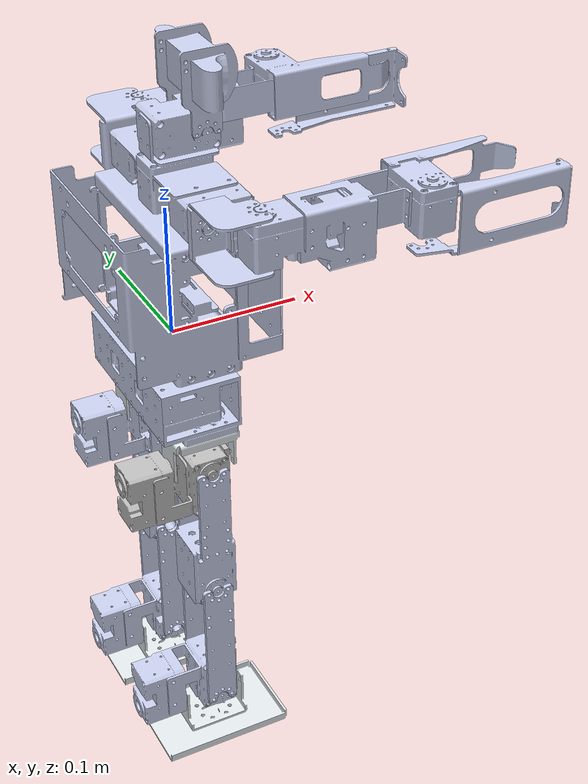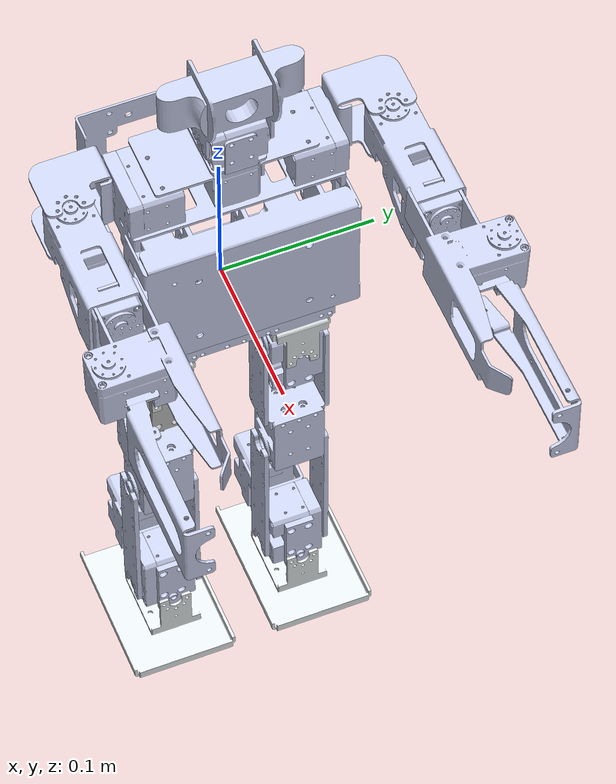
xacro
<?xml version="1.0" ?>
<robot
  name="kidsize" xmlns:xacro="http://www.ros.org/wiki/xacro">
  <xacro:property name="pi" value="3.14159265359" />
	<xacro:property name="deg" value="${pi/180}" />
		<material name="black">
			<color rgba="0.1 0.1 0.1 1" />
		</material>
		<material name="white">
			<color rgba="0.8 0.8 0.8 1" />
		</material>
		<material name="clear">
			<color rgba="1.0 1.0 1.0 0.0" />
		</material>
		<material name="orange">
			<color rgba="${255/255} ${108/255} ${10/255} 1.0" />
		</material>
      <link name="dummy">
   </link>
  <link
    name="waist_link">
    <inertial>
      <origin
        xyz="-0.0088172 -4.3153E-08 -0.0020413"
        rpy="0 0 0" />
      <mass
        value="0.22475" />
      <inertia
        ixx="0.00037837"
        ixy="1.6316E-10"
        ixz="4.0465E-06"
        iyy="0.00011027"
        iyz="1.9797E-11"
        izz="0.00039153" />
    </inertial>
    <visual>
      <origin
        xyz="0 0 0"
        rpy="0 0 0" />
      <geometry>
        <mesh
          filename="package://urdf/kidsize_model/11th/meshes/waist_link.STL" />
      </geometry>
      <material
        name="">
        <color
          rgba="0.79216 0.81961 0.93333 1" />
      </material>
    </visual>
    <collision>
      <origin
        xyz="0 0 0"
        rpy="0 0 0" />
      <geometry>
        <mesh
          filename="package://urdf/kidsize_model/11th/meshes/waist_link.STL" />
      </geometry>
    </collision>
  </link>
  <joint name="dummy_joint" type="fixed">
    <origin
      xyz="0 0 -0.028"
      rpy="0 0 0" />
     <parent link="dummy"/>
     <child link="waist_link"/>
   </joint>
  <link
    name="trunk_link">
    <inertial>
      <origin
        xyz="0.0077094 2.1697E-05 0.11416"
        rpy="0 0 0" />
      <mass
        value="0.26146" />
      <inertia
        ixx="0.0010729"
        ixy="2.0691E-07"
        ixz="-2.0835E-05"
        iyy="0.00069595"
        iyz="4.0117E-07"
        izz="0.00069847" />
    </inertial>
    <visual>
      <origin
        xyz="0 0 0"
        rpy="0 0 0" />
      <geometry>
        <mesh
          filename="package://urdf/kidsize_model/11th/meshes/trunk_link.STL" />
      </geometry>
      <material
        name="">
        <color
          rgba="0.79216 0.81961 0.93333 1" />
      </material>
    </visual>
    <collision>
      <origin
        xyz="0 0 0"
        rpy="0 0 0" />
      <geometry>
        <mesh
          filename="package://urdf/kidsize_model/11th/meshes/trunk_link.STL" />
      </geometry>
    </collision>
  </link>
  <joint
    name="waist_yaw"
    type="revolute">
    <origin
      xyz="0 0 0"
      rpy="0 0 0" />
    <parent
      link="waist_link" />
    <child
      link="trunk_link" />
    <axis
      xyz="0 0 1" />
    <limit
      lower="${-pi*0.9}"
      upper="${pi*0.9}"
      effort="1000"
      velocity="100" />
    <dynamics
      damping="0.0"
      friction="0.7" />
  </joint>
  <link
    name="neck_Link">
    <inertial>
      <origin
        xyz="-0.0080916 -0.00072376 0.036704"
        rpy="0 0 0" />
      <mass
        value="0.047879" />
      <inertia
        ixx="8.2755E-06"
        ixy="1.0134E-07"
        ixz="-4.3905E-08"
        iyy="1.3404E-05"
        iyz="4.4903E-08"
        izz="1.4047E-05" />
    </inertial>
    <visual>
      <origin
        xyz="0 0 0"
        rpy="0 0 0" />
      <geometry>
        <mesh
          filename="package://urdf/kidsize_model/11th/meshes/neck_Link.STL" />
      </geometry>
      <material
        name="">
        <color
          rgba="0.79216 0.81961 0.93333 1" />
      </material>
    </visual>
    <collision>
      <origin
        xyz="0 0 0"
        rpy="0 0 0" />
      <geometry>
        <mesh
          filename="package://urdf/kidsize_model/11th/meshes/neck_Link.STL" />
      </geometry>
    </collision>
  </link>
  <joint
    name="neck_yaw"
    type="revolute">
    <origin
      xyz="0.021 0 0.1495"
      rpy="0 0 0" />
    <parent
      link="trunk_link" />
    <child
      link="neck_Link" />
    <axis
      xyz="0 0 1" />
    <limit
      lower="${-pi*0.9}"
      upper="${pi*0.9}"
      effort="1000"
      velocity="100" />
    <dynamics
      damping="0.0"
      friction="0.7" />
  </joint>
  <link
    name="head_link">
    <inertial>
      <origin
        xyz="0.00029663 -3.6886E-05 0.037704"
        rpy="0 0 0" />
      <mass
        value="0.049548" />
      <inertia
        ixx="3.0661E-05"
        ixy="1.425E-10"
        ixz="-4.6871E-08"
        iyy="7.3036E-06"
        iyz="1.441E-09"
        izz="2.8273E-05" />
    </inertial>
    <visual>
      <origin
        xyz="0 0 0"
        rpy="0 0 0" />
      <geometry>
        <mesh
          filename="package://urdf/kidsize_model/11th/meshes/head_link.STL" />
      </geometry>
      <material
        name="">
        <color
          rgba="0.79216 0.81961 0.93333 1" />
      </material>
    </visual>
    <collision>
      <origin
        xyz="0 0 0"
        rpy="0 0 0" />
      <geometry>
        <mesh
          filename="package://urdf/kidsize_model/11th/meshes/head_link.STL" />
      </geometry>
    </collision>
  </link>
  <joint
    name="head_pitch"
    type="revolute">
    <origin
      xyz="0.00375 0 0.038"
      rpy="0 0 0" />
    <parent
      link="neck_Link" />
    <child
      link="head_link" />
    <axis
      xyz="0 -1 0" />
    <limit
      lower="${-pi*0.9}"
      upper="${pi*0.9}"
      effort="1000"
      velocity="100" />
    <dynamics
      damping="0.0"
      friction="0.7" />
  </joint>

  <link
    name="left_shoulder_pitch_link">
    <inertial>
      <origin
        xyz="0.0030363 0.036247 3.3909E-13"
        rpy="0 0 0" />
      <mass
        value="0.0085293" />
      <inertia
        ixx="4.4633E-06"
        ixy="-3.5249E-07"
        ixz="1.2655E-20"
        iyy="3.6085E-06"
        iyz="4.0375E-20"
        izz="2.7666E-06" />
    </inertial>
    <visual>
      <origin
        xyz="0 0 0"
        rpy="0 0 0" />
      <geometry>
        <mesh
          filename="package://urdf/kidsize_model/11th/meshes/left_shoulder_pitch_link.STL" />
      </geometry>
      <material
        name="">
        <color
          rgba="0.79216 0.81961 0.93333 1" />
      </material>
    </visual>
    <collision>
      <origin
        xyz="0 0 0"
        rpy="0 0 0" />
      <geometry>
        <mesh
          filename="package://urdf/kidsize_model/11th/meshes/left_shoulder_pitch_link.STL" />
      </geometry>
    </collision>
  </link>
  <joint
    name="left_shoulder_pitch"
    type="revolute">
    <origin
      xyz="0 0.0515 0.14675"
      rpy="0 0 0" />
    <parent
      link="trunk_link" />
    <child
      link="left_shoulder_pitch_link" />
    <axis
      xyz="0 1 0" />
    <limit
      lower="${-pi*0.9}"
      upper="${pi*0.9}"
      effort="1000"
      velocity="100" />
    <dynamics
      damping="0.0"
      friction="0.7" />
  </joint>
  <link
    name="left_upper_arm_link">
    <inertial>
      <origin
        xyz="-0.0021118 -2.0802E-07 -0.037458"
        rpy="0 0 0" />
      <mass
        value="0.093248" />
      <inertia
        ixx="7.4077E-05"
        ixy="1.7432E-10"
        ixz="-6.9326E-06"
        iyy="8.1541E-05"
        iyz="2.1903E-10"
        izz="2.1686E-05" />
    </inertial>
    <visual>
      <origin
        xyz="0 0 0"
        rpy="0 0 0" />
      <geometry>
        <mesh
          filename="package://urdf/kidsize_model/11th/meshes/left_upper_arm_link.STL" />
      </geometry>
      <material
        name="">
        <color
          rgba="0.79216 0.81961 0.93333 1" />
      </material>
    </visual>
    <collision>
      <origin
        xyz="0 0 0"
        rpy="0 0 0" />
      <geometry>
        <mesh
          filename="package://urdf/kidsize_model/11th/meshes/left_upper_arm_link.STL" />
      </geometry>
    </collision>
  </link>
  <joint
    name="left_shoulder_roll"
    type="revolute">
    <origin
      xyz="0.02425 0.049 0"
      rpy="0 -1.5708 0" />
    <parent
      link="left_shoulder_pitch_link" />
    <child
      link="left_upper_arm_link" />
    <axis
      xyz="1 0 0" />
    <limit
      lower="${-pi*0.9}"
      upper="${pi*0.9}"
      effort="1000"
      velocity="100" />
    <dynamics
      damping="0.0"
      friction="0.7" />
  </joint>
  <link
    name="left_middle_arm_link">
    <inertial>
      <origin
        xyz="0.0007383 8.6844E-06 -0.047706"
        rpy="0 0 0" />
      <mass
        value="0.047332" />
      <inertia
        ixx="1.3032E-05"
        ixy="-2.9073E-09"
        ixz="1.3333E-07"
        iyy="1.3674E-05"
        iyz="-1.3074E-08"
        izz="7.9361E-06" />
    </inertial>
    <visual>
      <origin
        xyz="0 0 0"
        rpy="0 0 0" />
      <geometry>
        <mesh
          filename="package://urdf/kidsize_model/11th/meshes/left_middle_arm_link.STL" />
      </geometry>
      <material
        name="">
        <color
          rgba="0.79216 0.81961 0.93333 1" />
      </material>
    </visual>
    <collision>
      <origin
        xyz="0 0 0"
        rpy="0 0 0" />
      <geometry>
        <mesh
          filename="package://urdf/kidsize_model/11th/meshes/left_middle_arm_link.STL" />
      </geometry>
    </collision>
  </link>
  <joint
    name="left_middle_yaw"
    type="revolute">
    <origin
      xyz="0.00575 0 -0.060331"
      rpy="0 0 0" />
    <parent
      link="left_upper_arm_link" />
    <child
      link="left_middle_arm_link" />
    <axis
      xyz="0 0 -1" />
    <limit
      lower="${-pi*0.9}"
      upper="${pi*0.9}"
      effort="1000"
      velocity="100" />
    <dynamics
      damping="0.0"
      friction="0.7" />
  </joint>
  <link
    name="left_lower_arm_link">
    <inertial>
      <origin
        xyz="0.0076862 0.00892 -0.075914"
        rpy="0 0 0" />
      <mass
        value="0.023059" />
      <inertia
        ixx="3.4222E-05"
        ixy="8.0645E-07"
        ixz="5.5788E-06"
        iyy="4.0879E-05"
        iyz="1.6007E-06"
        izz="1.2225E-05" />
    </inertial>
    <visual>
      <origin
        xyz="0 0 0"
        rpy="0 0 0" />
      <geometry>
        <mesh
          filename="package://urdf/kidsize_model/11th/meshes/left_lower_arm_link.STL" />
      </geometry>
      <material
        name="">
        <color
          rgba="0.79216 0.81961 0.93333 1" />
      </material>
    </visual>
    <collision>
      <origin
        xyz="0 0 0"
        rpy="0 0 0" />
      <geometry>
        <mesh
          filename="package://urdf/kidsize_model/11th/meshes/left_lower_arm_link.STL" />
      </geometry>
    </collision>
  </link>
  <joint
    name="left_elbow_pitch"
    type="revolute">
    <origin
      xyz="0 0 -0.06075"
      rpy="0 0 0" />
    <parent
      link="left_middle_arm_link" />
    <child
      link="left_lower_arm_link" />
    <axis
      xyz="1 0 0" />
    <limit
      lower="${-pi*0.9}"
      upper="${pi*0.9}"
      effort="1000"
      velocity="100" />
    <dynamics
      damping="0.0"
      friction="0.7" />
  </joint>
  <link
    name="right_shoulder_pitch_link">
    <inertial>
      <origin
        xyz="0.0030363 -0.036247 3.6568E-13"
        rpy="0 0 0" />
      <mass
        value="0.0085293" />
      <inertia
        ixx="4.4633E-06"
        ixy="3.5249E-07"
        ixz="4.0133E-20"
        iyy="3.6085E-06"
        iyz="-7.6128E-20"
        izz="2.7666E-06" />
    </inertial>
    <visual>
      <origin
        xyz="0 0 0"
        rpy="0 0 0" />
      <geometry>
        <mesh
          filename="package://urdf/kidsize_model/11th/meshes/right_shoulder_pitch_link.STL" />
      </geometry>
      <material
        name="">
        <color
          rgba="0.79216 0.81961 0.93333 1" />
      </material>
    </visual>
    <collision>
      <origin
        xyz="0 0 0"
        rpy="0 0 0" />
      <geometry>
        <mesh
          filename="package://urdf/kidsize_model/11th/meshes/right_shoulder_pitch_link.STL" />
      </geometry>
    </collision>
  </link>
  <joint
    name="right_shoulder_pitch"
    type="revolute">
    <origin
      xyz="0 -0.0515 0.14675"
      rpy="0 0 0" />
    <parent
      link="trunk_link" />
    <child
      link="right_shoulder_pitch_link" />
    <axis
      xyz="0 -1 0" />
    <limit
      lower="${-pi*0.9}"
      upper="${pi*0.9}"
      effort="1000"
      velocity="100" />
    <dynamics
      damping="0.0"
      friction="0.7" />
  </joint>
  <link
    name="right_upper_arm_link">
    <inertial>
      <origin
        xyz="-0.0021118 -2.0802E-07 -0.037458"
        rpy="0 0 0" />
      <mass
        value="0.093248" />
      <inertia
        ixx="7.4077E-05"
        ixy="1.7432E-10"
        ixz="-6.9326E-06"
        iyy="8.1541E-05"
        iyz="2.1903E-10"
        izz="2.1686E-05" />
    </inertial>
    <visual>
      <origin
        xyz="0 0 0"
        rpy="0 0 0" />
      <geometry>
        <mesh
          filename="package://urdf/kidsize_model/11th/meshes/right_upper_arm_link.STL" />
      </geometry>
      <material
        name="">
        <color
          rgba="0.79216 0.81961 0.93333 1" />
      </material>
    </visual>
    <collision>
      <origin
        xyz="0 0 0"
        rpy="0 0 0" />
      <geometry>
        <mesh
          filename="package://urdf/kidsize_model/11th/meshes/right_upper_arm_link.STL" />
      </geometry>
    </collision>
  </link>
  <joint
    name="right_shoulder_roll"
    type="revolute">
    <origin
      xyz="0.02425 -0.049 0"
      rpy="0 -1.5708 0" />
    <parent
      link="right_shoulder_pitch_link" />
    <child
      link="right_upper_arm_link" />
    <axis
      xyz="1 0 0" />
    <limit
      lower="${-pi*0.9}"
      upper="${pi*0.9}"
      effort="1000"
      velocity="100" />
    <dynamics
      damping="0.0"
      friction="0.7" />
  </joint>
  <link
    name="right_middle_arm_link">
    <inertial>
      <origin
        xyz="0.0007327 2.0507E-07 -0.047732"
        rpy="0 0 0" />
      <mass
        value="0.047295" />
      <inertia
        ixx="1.2988E-05"
        ixy="7.1062E-12"
        ixz="1.4211E-07"
        iyy="1.3632E-05"
        iyz="2.0385E-10"
        izz="7.9297E-06" />
    </inertial>
    <visual>
      <origin
        xyz="0 0 0"
        rpy="0 0 0" />
      <geometry>
        <mesh
          filename="package://urdf/kidsize_model/11th/meshes/right_middle_arm_link.STL" />
      </geometry>
      <material
        name="">
        <color
          rgba="0.79216 0.81961 0.93333 1" />
      </material>
    </visual>
    <collision>
      <origin
        xyz="0 0 0"
        rpy="0 0 0" />
      <geometry>
        <mesh
          filename="package://urdf/kidsize_model/11th/meshes/right_middle_arm_link.STL" />
      </geometry>
    </collision>
  </link>
  <joint
    name="right_middle_yaw"
    type="revolute">
    <origin
      xyz="0.00575 0 -0.060331"
      rpy="0 0 0" />
    <parent
      link="right_upper_arm_link" />
    <child
      link="right_middle_arm_link" />
    <axis
      xyz="0 0 -1" />
    <limit
      lower="${-pi*0.9}"
      upper="${pi*0.9}"
      effort="1000"
      velocity="100" />
    <dynamics
      damping="0.0"
      friction="0.7" />
  </joint>
  <link
    name="right_lower_arm_link">
    <inertial>
      <origin
        xyz="0.007686 -0.00892 -0.075914"
        rpy="0 0 0" />
      <mass
        value="0.023059" />
      <inertia
        ixx="3.4222E-05"
        ixy="-8.0645E-07"
        ixz="5.5789E-06"
        iyy="4.0879E-05"
        iyz="-1.6007E-06"
        izz="1.2225E-05" />
    </inertial>
    <visual>
      <origin
        xyz="0 0 0"
        rpy="0 0 0" />
      <geometry>
        <mesh
          filename="package://urdf/kidsize_model/11th/meshes/right_lower_arm_link.STL" />
      </geometry>
      <material
        name="">
        <color
          rgba="0.79216 0.81961 0.93333 1" />
      </material>
    </visual>
    <collision>
      <origin
        xyz="0 0 0"
        rpy="0 0 0" />
      <geometry>
        <mesh
          filename="package://urdf/kidsize_model/11th/meshes/right_lower_arm_link.STL" />
      </geometry>
    </collision>
  </link>
  <joint
    name="right_elbow_pitch"
    type="revolute">
    <origin
      xyz="0 0 -0.06075"
      rpy="0 0 0" />
    <parent
      link="right_middle_arm_link" />
    <child
      link="right_lower_arm_link" />
    <axis
      xyz="1 0 0" />
    <limit
      lower="${-pi*0.9}"
      upper="${pi*0.9}"
      effort="1000"
      velocity="100" />
    <dynamics
      damping="0.0"
      friction="0.7" />
  </joint>
  <link
    name="left_hip_yaw_link">
    <inertial>
      <origin
        xyz="-0.0021546 2.2293E-13 -0.034318"
        rpy="0 0 0" />
      <mass
        value="0.018738" />
      <inertia
        ixx="3.9876E-06"
        ixy="3.1499E-20"
        ixz="1.4063E-08"
        iyy="8.1834E-06"
        iyz="-4.7261E-20"
        izz="8.9113E-06" />
    </inertial>
    <visual>
      <origin
        xyz="0 0 0"
        rpy="0 0 0" />
      <geometry>
        <mesh
          filename="package://urdf/kidsize_model/11th/meshes/left_hip_yaw_link.STL" />
      </geometry>
      <material
        name="">
        <color
          rgba="0.89804 0.91765 0.92941 1" />
      </material>
    </visual>
    <collision>
      <origin
        xyz="0 0 0"
        rpy="0 0 0" />
      <geometry>
        <mesh
          filename="package://urdf/kidsize_model/11th/meshes/left_hip_yaw_link.STL" />
      </geometry>
    </collision>
  </link>
  <joint
    name="left_hip_yaw"
    type="revolute">
    <origin
      xyz="0 0.0445 0"
      rpy="0 0 0" />
    <parent
      link="waist_link" />
    <child
      link="left_hip_yaw_link" />
    <axis
      xyz="0 0 -1" />
    <limit
      lower="${-pi*0.9}"
      upper="${pi*0.9}"
      effort="1000"
      velocity="100" />
    <dynamics
      damping="0.0"
      friction="0.7" />
  </joint>
  <link
    name="left_hip_roll_link">
    <inertial>
      <origin
        xyz="0.024082 0.00037244 -0.011886"
        rpy="0 0 0" />
      <mass
        value="0.093018" />
      <inertia
        ixx="2.4459E-05"
        ixy="-7.3376E-07"
        ixz="-2.9851E-07"
        iyy="7.1013E-05"
        iyz="-1.0269E-07"
        izz="6.1881E-05" />
    </inertial>
    <visual>
      <origin
        xyz="0 0 0"
        rpy="0 0 0" />
      <geometry>
        <mesh
          filename="package://urdf/kidsize_model/11th/meshes/left_hip_roll_link.STL" />
      </geometry>
      <material
        name="">
        <color
          rgba="0.79216 0.81961 0.93333 1" />
      </material>
    </visual>
    <collision>
      <origin
        xyz="0 0 0"
        rpy="0 0 0" />
      <geometry>
        <mesh
          filename="package://urdf/kidsize_model/11th/meshes/left_hip_roll_link.STL" />
      </geometry>
    </collision>
  </link>
  <joint
    name="left_hip_roll"
    type="revolute">
    <origin
      xyz="-0.04575 0 -0.0586"
      rpy="0 0 0" />
    <parent
      link="left_hip_yaw_link" />
    <child
      link="left_hip_roll_link" />
    <axis
      xyz="1 0 0" />
    <limit
      lower="${-pi*0.9}"
      upper="${pi*0.9}"
      effort="1000"
      velocity="100" />
    <dynamics
      damping="0.0"
      friction="0.7" />
  </joint>
  <link
    name="left_bottom_foot_fake_link"><inertial>
      <origin
        xyz="0.0832407016442707 -0.0275030808874214 -0.0302963318842118"
        rpy="0 0 0" />
      <mass
        value="0.0001" />
      <inertia
        ixx="1.04719755119654E-22"
        ixy="-1.06581097908222E-67"
        ixz="3.63206357723254E-51"
        iyy="1.04719755119654E-22"
        iyz="-3.03551380010738E-55"
        izz="1.57079632679485E-22" />
    </inertial>
    <visual>
      <origin
        xyz="0 0 0"
        rpy="0 0 0" />
      <geometry>
        <mesh
          filename="package://urdf/kidsize_model/robocup_robot/meshes/left_bottom_foot_fake_link.STL" />
      </geometry>
      <material
        name="">
        <color
          rgba="0.792156862745098 0.819607843137255 0.933333333333333 1" />
      </material>
    </visual>
    <collision>
      <origin
        xyz="0 0 0"
        rpy="0 0 0" />
      <geometry>
        <mesh
          filename="package://urdf/kidsize_model/robocup_robot/meshes/left_bottom_foot_fake_link.STL" />
      </geometry>
    </collision>
  </link>
  <joint
    name="left_bottom_foot_fake_joint"
    type="fixed">
    <origin
      xyz="0.04476 -0.00049 -0.02556"
      rpy="0 0 0" />
    <parent
      link="left_foot_link" />
    <child
      link="left_bottom_foot_fake_link" />
    <axis
      xyz="1 0 0" />
    <limit
      lower="${-pi}"
      upper="${pi}"
      effort="10"
      velocity="0.1" />
    <dynamics
      friction="1" />
  </joint>
  <link
    name="left_thigh_link">
    <inertial>
      <origin
        xyz="-1.422E-07 0.00050805 -0.086495"
        rpy="0 0 0" />
      <mass
        value="0.068207" />
      <inertia
        ixx="5.7966E-05"
        ixy="-4.9275E-12"
        ixz="-3.0556E-10"
        iyy="5.395E-05"
        iyz="5.0551E-07"
        izz="1.6248E-05" />
    </inertial>
    <visual>
      <origin
        xyz="0 0 0"
        rpy="0 0 0" />
      <geometry>
        <mesh
          filename="package://urdf/kidsize_model/11th/meshes/left_thigh_link.STL" />
      </geometry>
      <material
        name="">
        <color
          rgba="0.79216 0.81961 0.93333 1" />
      </material>
    </visual>
    <collision>
      <origin
        xyz="0 0 0"
        rpy="0 0 0" />
      <geometry>
        <mesh
          filename="package://urdf/kidsize_model/11th/meshes/left_thigh_link.STL" />
      </geometry>
    </collision>
  </link>
  <joint
    name="left_hip_pitch"
    type="revolute">
    <origin
      xyz="0.04525 0 0"
      rpy="0 0 0" />
    <parent
      link="left_hip_roll_link" />
    <child
      link="left_thigh_link" />
    <axis
      xyz="0 1 0" />
    <limit
      lower="${-pi*0.9}"
      upper="${pi*0.9}"
      effort="1000"
      velocity="100" />
    <dynamics
      damping="0.0"
      friction="0.7" />
  </joint>
  <link
    name="left_shank_link">
    <inertial>
      <origin
        xyz="-1.3913E-12 2.7001E-13 -0.055223"
        rpy="0 0 0" />
      <mass
        value="0.015114" />
      <inertia
        ixx="2.1026E-05"
        ixy="9.7515E-20"
        ixz="-1.4082E-20"
        iyy="1.5417E-05"
        iyz="8.1038E-19"
        izz="7.1166E-06" />
    </inertial>
    <visual>
      <origin
        xyz="0 0 0"
        rpy="0 0 0" />
      <geometry>
        <mesh
          filename="package://urdf/kidsize_model/11th/meshes/left_shank_link.STL" />
      </geometry>
      <material
        name="">
        <color
          rgba="0.79216 0.81961 0.93333 1" />
      </material>
    </visual>
    <collision>
      <origin
        xyz="0 0 0"
        rpy="0 0 0" />
      <geometry>
        <mesh
          filename="package://urdf/kidsize_model/11th/meshes/left_shank_link.STL" />
      </geometry>
    </collision>
  </link>
  <joint
    name="left_knee_pitch"
    type="revolute">
    <origin
      xyz="0 0 -0.11"
      rpy="0 0 0" />
    <parent
      link="left_thigh_link" />
    <child
      link="left_shank_link" />
    <axis
      xyz="0 1 0" />
    <limit
      lower="${-pi*0.9}"
      upper="${pi*0.9}"
      effort="1000"
      velocity="100" />
    <dynamics
      damping="0.0"
      friction="0.7" />
  </joint>
  <link
    name="left_ankle_link">
    <inertial>
      <origin
        xyz="-0.021168 0.00037264 0.011886"
        rpy="0 0 0" />
      <mass
        value="0.093018" />
      <inertia
        ixx="2.4459E-05"
        ixy="-7.333E-07"
        ixz="2.9813E-07"
        iyy="7.1012E-05"
        iyz="1.0308E-07"
        izz="6.188E-05" />
    </inertial>
    <visual>
      <origin
        xyz="0 0 0"
        rpy="0 0 0" />
      <geometry>
        <mesh
          filename="package://urdf/kidsize_model/11th/meshes/left_ankle_link.STL" />
      </geometry>
      <material
        name="">
        <color
          rgba="0.79216 0.81961 0.93333 1" />
      </material>
    </visual>
    <collision>
      <origin
        xyz="0 0 0"
        rpy="0 0 0" />
      <geometry>
        <mesh
          filename="package://urdf/kidsize_model/11th/meshes/left_ankle_link.STL" />
      </geometry>
    </collision>
  </link>
  <joint
    name="left_ankle_pitch"
    type="revolute">
    <origin
      xyz="0 0 -0.11"
      rpy="0 0 0" />
    <parent
      link="left_shank_link" />
    <child
      link="left_ankle_link" />
    <axis
      xyz="0 1 0" />
    <limit
      lower="${-pi*0.9}"
      upper="${pi*0.9}"
      effort="1000"
      velocity="100" />
    <dynamics
      damping="0.0"
      friction="0.7" />
  </joint>
  <link
    name="left_foot_link">
    <inertial>
      <origin
        xyz="0.044554 0.0018445 -0.028159"
        rpy="0 0 0" />
      <mass
        value="0.032328" />
      <inertia
        ixx="1.2045E-05"
        ixy="-5.316E-08"
        ixz="-6.2819E-09"
        iyy="2.4302E-05"
        iyz="2.4929E-07"
        izz="3.185E-05" />
    </inertial>
    <visual>
      <origin
        xyz="0 0 0"
        rpy="0 0 0" />
      <geometry>
        <mesh
          filename="package://urdf/kidsize_model/11th/meshes/left_foot_link.STL" />
      </geometry>
      <material
        name="">
        <color
          rgba="0.89804 0.91765 0.92941 1" />
      </material>
    </visual>
    <collision>
      <origin
        xyz="0 0 0"
        rpy="0 0 0" />
      <geometry>
        <mesh
          filename="package://urdf/kidsize_model/11th/meshes/left_foot_link.STL" />
      </geometry>
    </collision>
  </link>
  <joint
    name="left_ankle_roll"
    type="revolute">
    <origin
      xyz="-0.04525 0 0"
      rpy="0 0 0" />
    <parent
      link="left_ankle_link" />
    <child
      link="left_foot_link" />
    <axis
      xyz="1 0 0" />
    <limit
      lower="${-pi*0.9}"
      upper="${pi*0.9}"
      effort="1000"
      velocity="100" />
    <dynamics
      damping="0.0"
      friction="0.7" />
  </joint>
  <link
    name="right_hip_yaw_link">
    <inertial>
      <origin
        xyz="-0.0021546 3.5527E-13 -0.034318"
        rpy="0 0 0" />
      <mass
        value="0.018738" />
      <inertia
        ixx="3.9876E-06"
        ixy="-1.0404E-18"
        ixz="1.4063E-08"
        iyy="8.1834E-06"
        iyz="-6.7496E-21"
        izz="8.9113E-06" />
    </inertial>
    <visual>
      <origin
        xyz="0 0 0"
        rpy="0 0 0" />
      <geometry>
        <mesh
          filename="package://urdf/kidsize_model/11th/meshes/right_hip_yaw_link.STL" />
      </geometry>
      <material
        name="">
        <color
          rgba="0.89804 0.91765 0.92941 1" />
      </material>
    </visual>
    <collision>
      <origin
        xyz="0 0 0"
        rpy="0 0 0" />
      <geometry>
        <mesh
          filename="package://urdf/kidsize_model/11th/meshes/right_hip_yaw_link.STL" />
      </geometry>
    </collision>
  </link>
  <joint
    name="right_hip_yaw"
    type="revolute">
    <origin
      xyz="0 -0.0445 0"
      rpy="0 0 0" />
    <parent
      link="waist_link" />
    <child
      link="right_hip_yaw_link" />
    <axis
      xyz="0 0 -1" />
    <limit
      lower="${-pi*0.9}"
      upper="${pi*0.9}"
      effort="1000"
      velocity="100" />
    <dynamics
      damping="0.0"
      friction="0.7" />
  </joint>
  <link
    name="right_hip_roll_link">
    <inertial>
      <origin
        xyz="0.024082 -0.00037264 -0.011886"
        rpy="0 0 0" />
      <mass
        value="0.093018" />
      <inertia
        ixx="2.4459E-05"
        ixy="7.333E-07"
        ixz="-2.9813E-07"
        iyy="7.1012E-05"
        iyz="1.0308E-07"
        izz="6.188E-05" />
    </inertial>
    <visual>
      <origin
        xyz="0 0 0"
        rpy="0 0 0" />
      <geometry>
        <mesh
          filename="package://urdf/kidsize_model/11th/meshes/right_hip_roll_link.STL" />
      </geometry>
      <material
        name="">
        <color
          rgba="0.75294 0.75294 0.75294 1" />
      </material>
    </visual>
    <collision>
      <origin
        xyz="0 0 0"
        rpy="0 0 0" />
      <geometry>
        <mesh
          filename="package://urdf/kidsize_model/11th/meshes/right_hip_roll_link.STL" />
      </geometry>
    </collision>
  </link>
  <joint
    name="right_hip_roll"
    type="revolute">
    <origin
      xyz="-0.04575 0 -0.0586"
      rpy="0 0 0" />
    <parent
      link="right_hip_yaw_link" />
    <child
      link="right_hip_roll_link" />
    <axis
      xyz="1 0 0" />
    <limit
      lower="${-pi*0.9}"
      upper="${pi*0.9}"
      effort="1000"
      velocity="100" />
    <dynamics
      damping="0.0"
      friction="0.7" />
  </joint>
  <link
    name="right_bottom_foot_fake_link"><inertial>
      <origin
        xyz="0.0832407016442707 -0.0275030808874214 -0.0302963318842118"
        rpy="0 0 0" />
      <mass
        value="0.0001" />
      <inertia
        ixx="1.04719755119654E-22"
        ixy="-1.06581097908222E-67"
        ixz="3.63206357723254E-51"
        iyy="1.04719755119654E-22"
        iyz="-3.03551380010738E-55"
        izz="1.57079632679485E-22" />
    </inertial>
    <visual>
      <origin
        xyz="0 0 0"
        rpy="0 0 0" />
      <geometry>
        <mesh
          filename="package://urdf/kidsize_model/robocup_robot/meshes/right_bottom_foot_fake_link.STL" />
      </geometry>
      <material
        name="">
        <color
          rgba="0.792156862745098 0.819607843137255 0.933333333333333 1" />
      </material>
    </visual>
    <collision>
      <origin
        xyz="0 0 0"
        rpy="0 0 0" />
      <geometry>
        <mesh
          filename="package://urdf/kidsize_model/robocup_robot/meshes/right_bottom_foot_fake_link.STL" />
      </geometry>
    </collision>
  </link>
  <joint
    name="right_bottom_foot_fake_joint"
    type="fixed">
    <origin
      xyz="0.04476 -0.00049 -0.02556"
      rpy="0 0 0" />
    <parent
      link="right_foot_link" />
    <child
      link="right_bottom_foot_fake_link" />
    <axis
      xyz="1 0 0" />
    <limit
      lower="${-pi}"
      upper="${pi}"
      effort="10"
      velocity="0.1" />
    <dynamics
      friction="1" />
  </joint>
  <link
    name="right_thigh_link">
    <inertial>
      <origin
        xyz="1.422E-07 -0.00050805 -0.086495"
        rpy="0 0 0" />
      <mass
        value="0.068207" />
      <inertia
        ixx="5.7966E-05"
        ixy="-4.9275E-12"
        ixz="3.0556E-10"
        iyy="5.395E-05"
        iyz="-5.0551E-07"
        izz="1.6248E-05" />
    </inertial>
    <visual>
      <origin
        xyz="0 0 0"
        rpy="0 0 0" />
      <geometry>
        <mesh
          filename="package://urdf/kidsize_model/11th/meshes/right_thigh_link.STL" />
      </geometry>
      <material
        name="">
        <color
          rgba="0.79216 0.81961 0.93333 1" />
      </material>
    </visual>
    <collision>
      <origin
        xyz="0 0 0"
        rpy="0 0 0" />
      <geometry>
        <mesh
          filename="package://urdf/kidsize_model/11th/meshes/right_thigh_link.STL" />
      </geometry>
    </collision>
  </link>
  <joint
    name="right_hip_pitch"
    type="revolute">
    <origin
      xyz="0.04525 0 0"
      rpy="0 0 0" />
    <parent
      link="right_hip_roll_link" />
    <child
      link="right_thigh_link" />
    <axis
      xyz="0 -1 0" />
    <limit
      lower="${-pi*0.9}"
      upper="${pi*0.9}"
      effort="1000"
      velocity="100" />
    <dynamics
      damping="0.0"
      friction="0.7" />
  </joint>
  <link
    name="right_shank_link">
    <inertial>
      <origin
        xyz="5.7732E-13 -1.0925E-13 -0.055223"
        rpy="0 0 0" />
      <mass
        value="0.015114" />
      <inertia
        ixx="2.1026E-05"
        ixy="-2.6068E-16"
        ixz="-1.0246E-19"
        iyy="1.5417E-05"
        iyz="-8.9723E-17"
        izz="7.1166E-06" />
    </inertial>
    <visual>
      <origin
        xyz="0 0 0"
        rpy="0 0 0" />
      <geometry>
        <mesh
          filename="package://urdf/kidsize_model/11th/meshes/right_shank_link.STL" />
      </geometry>
      <material
        name="">
        <color
          rgba="0.79216 0.81961 0.93333 1" />
      </material>
    </visual>
    <collision>
      <origin
        xyz="0 0 0"
        rpy="0 0 0" />
      <geometry>
        <mesh
          filename="package://urdf/kidsize_model/11th/meshes/right_shank_link.STL" />
      </geometry>
    </collision>
  </link>
  <joint
    name="right_knee_pitch"
    type="revolute">
    <origin
      xyz="0 0 -0.11"
      rpy="0 0 0" />
    <parent
      link="right_thigh_link" />
    <child
      link="right_shank_link" />
    <axis
      xyz="0 -1 0" />
    <limit
      lower="${-pi*0.9}"
      upper="${pi*0.9}"
      effort="1000"
      velocity="100" />
    <dynamics
      damping="0.0"
      friction="0.7" />
  </joint>
  <link
    name="right_ankle_link">
    <inertial>
      <origin
        xyz="-0.021168 -0.00037244 0.011886"
        rpy="0 0 0" />
      <mass
        value="0.093018" />
      <inertia
        ixx="2.4459E-05"
        ixy="7.3376E-07"
        ixz="2.9851E-07"
        iyy="7.1013E-05"
        iyz="-1.0269E-07"
        izz="6.1881E-05" />
    </inertial>
    <visual>
      <origin
        xyz="0 0 0"
        rpy="0 0 0" />
      <geometry>
        <mesh
          filename="package://urdf/kidsize_model/11th/meshes/right_ankle_link.STL" />
      </geometry>
      <material
        name="">
        <color
          rgba="0.79216 0.81961 0.93333 1" />
      </material>
    </visual>
    <collision>
      <origin
        xyz="0 0 0"
        rpy="0 0 0" />
      <geometry>
        <mesh
          filename="package://urdf/kidsize_model/11th/meshes/right_ankle_link.STL" />
      </geometry>
    </collision>
  </link>
  <joint
    name="right_ankle_pitch"
    type="revolute">
    <origin
      xyz="0 0 -0.11"
      rpy="0 0 0" />
    <parent
      link="right_shank_link" />
    <child
      link="right_ankle_link" />
    <axis
      xyz="0 -1 0" />
    <limit
      lower="${-pi*0.9}"
      upper="${pi*0.9}"
      effort="1000"
      velocity="100" />
    <dynamics
      damping="0.0"
      friction="0.7" />
  </joint>
  <link
    name="right_foot_link">
    <inertial>
      <origin
        xyz="0.044554 -0.0018441 -0.028159"
        rpy="0 0 0" />
      <mass
        value="0.032328" />
      <inertia
        ixx="1.2045E-05"
        ixy="5.3184E-08"
        ixz="-6.2819E-09"
        iyy="2.4302E-05"
        iyz="-2.4915E-07"
        izz="3.185E-05" />
    </inertial>
    <visual>
      <origin
        xyz="0 0 0"
        rpy="0 0 0" />
      <geometry>
        <mesh
          filename="package://urdf/kidsize_model/11th/meshes/right_foot_link.STL" />
      </geometry>
      <material
        name="">
        <color
          rgba="0.89804 0.91765 0.92941 1" />
      </material>
    </visual>
    <collision>
      <origin
        xyz="0 0 0"
        rpy="0 0 0" />
      <geometry>
        <mesh
          filename="package://urdf/kidsize_model/11th/meshes/right_foot_link.STL" />
      </geometry>
    </collision>
  </link>
  <joint
    name="right_ankle_roll"
    type="revolute">
    <origin
      xyz="-0.04525 0 0"
      rpy="0 0 0" />
    <parent
      link="right_ankle_link" />
    <child
      link="right_foot_link" />
    <axis
      xyz="1 0 0" />
    <limit
      lower="${-pi*0.9}"
      upper="${pi*0.9}"
      effort="1000"
      velocity="100" />
    <dynamics
      damping="0.0"
      friction="0.7" />
  </joint>

  <joint
    name="camera_joint"
    type="fixed">
    <origin
      xyz="0.00225 -4.4516E-05 0.0385"
      rpy="0 0 0" />
    <parent
      link="head_link" />
    <child
      link="camera_link" />
    <axis
      xyz="0 0 0" />
  </joint>
  <!-- Camera -->
  <link name="camera_link">
    <collision>
      <origin xyz="-0.006 0 0" rpy="0 1.5708 0"/>
      <geometry>
    <cylinder radius="0.0001" length="0.0005"/>
      </geometry>
    </collision>

    <visual>
      <origin xyz="-0.006 0 0" rpy="0 1.5708 0"/>
      <geometry>
    <cylinder radius="0.0001" length="0.0005"/>
      </geometry>
    </visual>

    <inertial>
      <mass value="1e-5" />
      <origin xyz="0 0 0" rpy="0 0 0"/>
      <inertia ixx="1e-6" ixy="0" ixz="0" iyy="1e-6" iyz="0" izz="1e-6" />
    </inertial>
  </link>

      <transmission name="right_hip_yaw_transmission">
			  <type>transmission_interface/SimpleTransmission</type>
			  <joint name="right_hip_yaw" >
                <hardwareInterface>hardware_interface/EffortJointInterface</hardwareInterface>

   </joint>
			<actuator name="right_hip_yaw">
				<mechanicalReduction>1</mechanicalReduction>
			</actuator>
		</transmission>
		<transmission name="right_hip_roll_transmission">
			<type>transmission_interface/SimpleTransmission</type>
            <joint name="right_hip_roll" >
				<hardwareInterface>hardware_interface/EffortJointInterface</hardwareInterface>

   </joint>
			<actuator name="right_hip_roll">
				<mechanicalReduction>1</mechanicalReduction>
			</actuator>
		</transmission>
		<transmission name="right_hip_pitch_transmission">
			<type>transmission_interface/SimpleTransmission</type>
            <joint name="right_hip_pitch" >
				<hardwareInterface>hardware_interface/EffortJointInterface</hardwareInterface>

   </joint>
			<actuator name="right_hip_pitch">
				<mechanicalReduction>1</mechanicalReduction>
			</actuator>
		</transmission>
		<transmission name="right_knee_pitch_transmission">
			<type>transmission_interface/SimpleTransmission</type>
            <joint name="right_knee_pitch" >
				<hardwareInterface>hardware_interface/EffortJointInterface</hardwareInterface>

   </joint>
			<actuator name="right_knee_pitch">
				<mechanicalReduction>1</mechanicalReduction>
			</actuator>
		</transmission>
		<transmission name="right_ankle_pitch_transmission">
			<type>transmission_interface/SimpleTransmission</type>
            <joint name="right_ankle_pitch" >
				<hardwareInterface>hardware_interface/EffortJointInterface</hardwareInterface>

   </joint>
			<actuator name="right_ankle_pitch">
				<mechanicalReduction>1</mechanicalReduction>
			</actuator>
		</transmission>
		<transmission name="right_ankle_roll_transmission">
			<type>transmission_interface/SimpleTransmission</type>
            <joint name="right_ankle_roll" >
                <hardwareInterface>hardware_interface/EffortJointInterface</hardwareInterface>

   </joint>
			<actuator name="right_ankle_roll">
				<mechanicalReduction>1</mechanicalReduction>
			</actuator>
		</transmission>
		<transmission name="left_hip_yaw_transmission">
			<type>transmission_interface/SimpleTransmission</type>
            <joint name="left_hip_yaw" >
				<hardwareInterface>hardware_interface/EffortJointInterface</hardwareInterface>

   </joint>
			<actuator name="left_hip_yaw">
				<mechanicalReduction>1</mechanicalReduction>
			</actuator>
		</transmission>
		<transmission name="left_hip_roll_transmission">
			<type>transmission_interface/SimpleTransmission</type>
            <joint name="left_hip_roll" >
				<hardwareInterface>hardware_interface/EffortJointInterface</hardwareInterface>

   </joint>
			<actuator name="left_hip_roll">
				<mechanicalReduction>1</mechanicalReduction>
			</actuator>
		</transmission>
		<transmission name="left_hip_pitch_transmission">
			<type>transmission_interface/SimpleTransmission</type>
            <joint name="left_hip_pitch" >
				<hardwareInterface>hardware_interface/EffortJointInterface</hardwareInterface>

   </joint>
			<actuator name="left_hip_pitch">
				<mechanicalReduction>1</mechanicalReduction>
			</actuator>
		</transmission>
		<transmission name="left_knee_pitch_transmission">
			<type>transmission_interface/SimpleTransmission</type>
            <joint name="left_knee_pitch" >
				<hardwareInterface>hardware_interface/EffortJointInterface</hardwareInterface>

   </joint>
			<actuator name="left_knee_pitch">
				<mechanicalReduction>1</mechanicalReduction>
			</actuator>
		</transmission>
		<transmission name="left_ankle_pitch_transmission">
			<type>transmission_interface/SimpleTransmission</type>
            <joint name="left_ankle_pitch" >
				<hardwareInterface>hardware_interface/EffortJointInterface</hardwareInterface>

   </joint>
			<actuator name="left_ankle_pitch">
				<mechanicalReduction>1</mechanicalReduction>
			</actuator>
		</transmission>
		<transmission name="left_ankle_roll_transmission">
			<type>transmission_interface/SimpleTransmission</type>
            <joint name="left_ankle_roll" >
				<hardwareInterface>hardware_interface/EffortJointInterface</hardwareInterface>

   </joint>
			<actuator name="left_ankle_roll">
				<mechanicalReduction>1</mechanicalReduction>
			</actuator>
		</transmission>
		<transmission name="right_shoulder_pitch_transmission">
			<type>transmission_interface/SimpleTransmission</type>
            <joint name="right_shoulder_pitch" >
				<hardwareInterface>hardware_interface/EffortJointInterface</hardwareInterface>

   </joint>
			<actuator name="right_shoulder_pitch">
				<mechanicalReduction>1</mechanicalReduction>
			</actuator>
		</transmission>
		<transmission name="right_shoulder_roll_transmission">
			<type>transmission_interface/SimpleTransmission</type>
            <joint name="right_shoulder_roll" >
				<hardwareInterface>hardware_interface/EffortJointInterface</hardwareInterface>

   </joint>
			<actuator name="right_shoulder_roll">
				<mechanicalReduction>1</mechanicalReduction>
			</actuator>
		</transmission>
                <transmission name="right_middle_yaw_transmission">
			<type>transmission_interface/SimpleTransmission</type>
            <joint name="right_middle_yaw" >
				<hardwareInterface>hardware_interface/EffortJointInterface</hardwareInterface>

   </joint>
			<actuator name="right_middle_yaw">
				<mechanicalReduction>1</mechanicalReduction>
			</actuator>
		</transmission>
		<transmission name="right_elbow_pitch_transmission">
			<type>transmission_interface/SimpleTransmission</type>
            <joint name="right_elbow_pitch" >
				<hardwareInterface>hardware_interface/EffortJointInterface</hardwareInterface>

   </joint>
			<actuator name="right_elbow_pitch">
				<mechanicalReduction>1</mechanicalReduction>
			</actuator>
		</transmission>
		<transmission name="left_shoulder_pitch_transmission">
			<type>transmission_interface/SimpleTransmission</type>
            <joint name="left_shoulder_pitch" >
				<hardwareInterface>hardware_interface/EffortJointInterface</hardwareInterface>

   </joint>
			<actuator name="left_shoulder_pitch">
				<mechanicalReduction>1</mechanicalReduction>
			</actuator>
		</transmission>
		<transmission name="left_shoulder_roll_transmission">
			<type>transmission_interface/SimpleTransmission</type>
            <joint name="left_shoulder_roll" >
				<hardwareInterface>hardware_interface/EffortJointInterface</hardwareInterface>

   </joint>
			<actuator name="left_shoulder_roll">
				<mechanicalReduction>1</mechanicalReduction>
			</actuator>
		</transmission>
                <transmission name="left_middle_yaw_transmission">
			<type>transmission_interface/SimpleTransmission</type>
            <joint name="left_middle_yaw" >
				<hardwareInterface>hardware_interface/EffortJointInterface</hardwareInterface>

   </joint>
			<actuator name="left_middle_yaw">
				<mechanicalReduction>1</mechanicalReduction>
			</actuator>
		</transmission>
		<transmission name="left_elbow_pitch_transmission">
			<type>transmission_interface/SimpleTransmission</type>
            <joint name="left_elbow_pitch" >
				<hardwareInterface>hardware_interface/EffortJointInterface</hardwareInterface>

   </joint>
			<actuator name="left_elbow_pitch">
				<mechanicalReduction>1</mechanicalReduction>
			</actuator>
		</transmission>
		<transmission name="neck_yaw_transmission">
			<type>transmission_interface/SimpleTransmission</type>
            <joint name="neck_yaw" >
				<hardwareInterface>hardware_interface/EffortJointInterface</hardwareInterface>

   </joint>
			<actuator name="neck_yaw">
				<mechanicalReduction>1</mechanicalReduction>
			</actuator>
		</transmission>
		<transmission name="head_pitch_transmission">
			<type>transmission_interface/SimpleTransmission</type>
            <joint name="head_pitch" >
				<hardwareInterface>hardware_interface/EffortJointInterface</hardwareInterface>

   </joint>
			<actuator name="head_pitch">
				<mechanicalReduction>1</mechanicalReduction>
			</actuator>
		</transmission>

                <transmission name="waist_yaw_transmission">
			<type>transmission_interface/SimpleTransmission</type>
            <joint name="waist_yaw" >
				<hardwareInterface>hardware_interface/EffortJointInterface</hardwareInterface>

   </joint>
			<actuator name="waist_yaw">
				<mechanicalReduction>1</mechanicalReduction>
			</actuator>
		</transmission>

		<!-- Gazebo configuration -->

		<gazebo>
			<plugin name="gazebo_ros_control" filename="libgazebo_ros_control.so">
				<robotNamespace>/kidsize</robotNamespace>
				<legacyModeNS>true</legacyModeNS>
			</plugin>
		</gazebo>

<gazebo reference="camera_link">
<material>Gazebo/Black</material>
    <sensor type="camera" name="camera1">
      <visualize>0</visualize>
      <update_rate>30.0</update_rate>
      <camera name="head">
        <horizontal_fov>1.3962634</horizontal_fov>
        <image>
          <width>800</width>
          <height>600</height>
          <format>R8G8B8</format>
        </image>
        <clip>
          <near>0.2</near>
          <far>1000</far>
        </clip>
        <noise>
          <type>gaussian</type>
          <!-- Noise is sampled independently per pixel on each frame.
               That pixel's noise value is added to each of its color
               channels, which at that point lie in the range [0,1]. -->
          <mean>0.0</mean>
          <stddev>0.007</stddev>
        </noise>
      </camera>
      <plugin name="camera_controller" filename="libgazebo_ros_camera.so">
	<robotNamespace>/kidsize</robotNamespace>
        <alwaysOn>true</alwaysOn>
        <updateRate>0.0</updateRate>
        <cameraName>/camera</cameraName>
        <imageTopicName>image_raw</imageTopicName>
        <cameraInfoTopicName>camera_info</cameraInfoTopicName>
        <frameName>camera_link</frameName>
        <hackBaseline>0.07</hackBaseline>
        <distortionK1>0.0</distortionK1>
        <distortionK2>0.0</distortionK2>
        <distortionK3>0.0</distortionK3>
        <distortionT1>0.0</distortionT1>
        <distortionT2>0.0</distortionT2>
      </plugin>
    </sensor>
</gazebo>

		<!-- Gazebo links -->
		<gazebo reference="trunk_link">
			<material>Gazebo/White</material>
		</gazebo>
                <gazebo reference="waist_link">
			<material>Gazebo/White</material>
		</gazebo>
		<gazebo reference="left_hip_yaw_link">
			<material>Gazebo/White</material>
		</gazebo>
		<gazebo reference="left_hip_roll_link">
			<material>Gazebo/Black</material>
		</gazebo>
		<gazebo reference="left_thigh_link">
			<material>Gazebo/White</material>
		</gazebo>
		<gazebo reference="left_shank_link">
			<material>Gazebo/White</material>
		</gazebo>
		<gazebo reference="left_ankle_link">
			<material>Gazebo/Black</material>
		</gazebo>
		<gazebo reference="left_foot_link">
			<material>Gazebo/FlatBlack</material>
			<kp>1000000.0</kp>
			<kd>100.0</kd>
			<mu1>10000.0</mu1>
			<mu2>10000.0</mu2>
			<fdir1>1 0 0</fdir1>
			<maxVel>1.0</maxVel>
			<minDepth>0.00</minDepth>
		</gazebo>
		<gazebo reference="left_shoulder_pitch_link">
			<material>Gazebo/White</material>
		</gazebo>
		<gazebo reference="left_upper_arm_link">
			<material>Gazebo/White</material>
		</gazebo>
                <gazebo reference="left_middle_arm_link">
			<material>Gazebo/White</material>
		</gazebo>
		<gazebo reference="left_lower_arm_link">
			<material>Gazebo/White</material>
		</gazebo>
		<gazebo reference="right_hip_yaw_link">
			<material>Gazebo/White</material>
		</gazebo>
		<gazebo reference="right_hip_roll_link">
			<material>Gazebo/Black</material>
		</gazebo>
		<gazebo reference="right_thigh_link">
			<material>Gazebo/White</material>
		</gazebo>
		<gazebo reference="right_shank_link">
			<material>Gazebo/White</material>
		</gazebo>
		<gazebo reference="right_ankle_link">
			<material>Gazebo/Black</material>
		</gazebo>
		<gazebo reference="right_foot_link">
			<material>Gazebo/FlatBlack</material>
			<kp>1000000.0</kp>
			<kd>100.0</kd>
			<mu1>10000.0</mu1>
			<mu2>10000.0</mu2>
			<fdir1>1 0 0</fdir1>
			<maxVel>1.0</maxVel>
			<minDepth>0.00</minDepth>
		</gazebo>
		<gazebo reference="right_shoulder_pitch_link">
			<material>Gazebo/White</material>
		</gazebo>
		<gazebo reference="right_upper_arm_link">
			<material>Gazebo/White</material>
		</gazebo>
                <gazebo reference="right_middle_arm_link">
			<material>Gazebo/White</material>
		</gazebo>
		<gazebo reference="right_lower_arm_link">
			<material>Gazebo/White</material>
		</gazebo>
		<gazebo reference="neck_link">
			<material>Gazebo/Black</material>
		</gazebo>

</robot>
